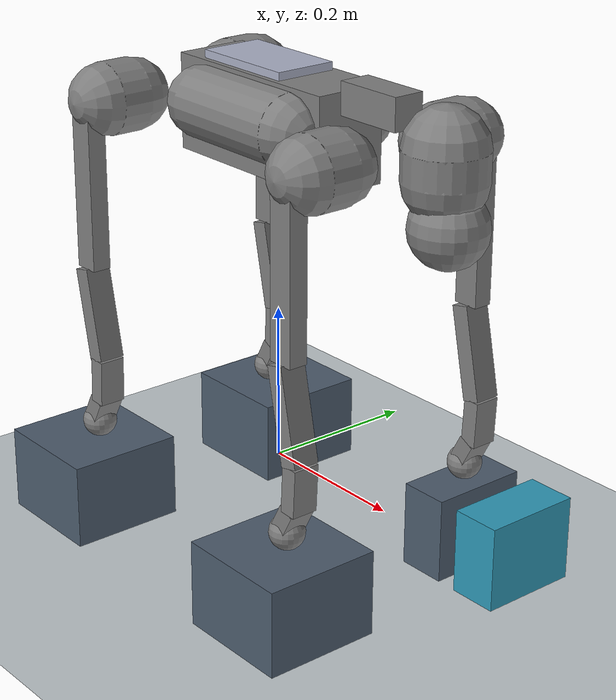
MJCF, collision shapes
<mujoco model="primp_adjustable_landing_pad">
  <include file="/home/ibrahim/Documents/GO-2 PRIMP/primp_project/results/weak_pad/study_v2/trials/fr_no_safe_test_capacity80_adaptive_force_fixed_posture_seed101/weak_pad_adaptive_force_fixed_posture_20260921T111951_992495Z/scene/robot_initial.xml" />
  <statistic center="0 0 0.1" extent="0.9" />
  <visual>
    <headlight diffuse="0.5 0.5 0.5" ambient="0.35 0.35 0.35" />
    <global azimuth="-130" elevation="-25" />
  </visual>
  <worldbody>
    <light pos="0 0 3" dir="0 0 -1" directional="true" />
    <geom name="floor" type="plane" size="0 0 0.05" pos="0 0 -0.12" rgba="0.75 0.78 0.8 1" />
    <geom name="primp_support_FL" type="box" pos="0.19515678006345849 0.13499999999999998 -0.055" size="0.032 0.065 0.055" rgba="0.3 0.36 0.43 1" friction="0.8 0.005 0" condim="3" />
    <geom name="primp_support_FR" type="box" pos="0.18915678006355349 -0.14800000000000005 -0.055" size="0.075 0.075 0.055" rgba="0.3 0.36 0.43 1" friction="0.8 0.005 0" condim="3" />
    <geom name="primp_support_RL" type="box" pos="-0.19064321993625094 0.14900000000021879 -0.055" size="0.075 0.075 0.055" rgba="0.3 0.36 0.43 1" friction="0.8 0.005 0" condim="3" />
    <geom name="primp_support_RR" type="box" pos="-0.19864321993654135 -0.15100000000000002 -0.055" size="0.075 0.075 0.055" rgba="0.3 0.36 0.43 1" friction="0.8 0.005 0" condim="3" />
    <geom name="primp_landing_pad" type="box" pos="0.28515678006345846 0.13499999999999998 -0.055" size="0.032 0.065 0.055" rgba="0.18 0.6 0.72 1" friction="0.8 0.005 0" condim="3" />
  </worldbody>
</mujoco>

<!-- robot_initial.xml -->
<mujoco model="go2_description">
  <compiler angle="radian" autolimits="true" />
  <option cone="elliptic" impratio="100" />
  <default>
    <default class="go2">
      <joint axis="0 1 0" />
      <geom friction="0.6" margin="0.001" />
      <motor ctrlrange="-23.7 23.7" />
      <default class="abduction">
        <joint axis="1 0 0" range="-1.0472 1.0472" />
      </default>
      <default class="hip">
        <default class="front_hip">
          <joint range="-1.5708 3.4907" />
        </default>
        <default class="back_hip">
          <joint range="-0.5236 4.5379" />
        </default>
      </default>
      <default class="knee">
        <joint range="-2.7227 -0.83776" />
        <motor ctrlrange="-45.43 45.43" />
      </default>
      <default class="visual">
        <geom type="mesh" contype="0" conaffinity="0" group="2" />
      </default>
      <default class="collision">
        <geom group="3" />
      </default>
    </default>
  </default>
  <asset>
    <material name="metal" rgba=".9 .95 .95 1" />
    <material name="black" rgba="0 0 0 1" />
    <material name="white" rgba="1 1 1 1" />
    <material name="gray" rgba="0.671705 0.692426 0.774270 1" />
    <mesh file="/home/ibrahim/miniconda3/envs/quadruped-pympc/lib/python3.12/site-packages/gym_quadruped/robot_model/go2/assets/base_0.obj" />
    <mesh file="/home/ibrahim/miniconda3/envs/quadruped-pympc/lib/python3.12/site-packages/gym_quadruped/robot_model/go2/assets/base_1.obj" />
    <mesh file="/home/ibrahim/miniconda3/envs/quadruped-pympc/lib/python3.12/site-packages/gym_quadruped/robot_model/go2/assets/base_2.obj" />
    <mesh file="/home/ibrahim/miniconda3/envs/quadruped-pympc/lib/python3.12/site-packages/gym_quadruped/robot_model/go2/assets/base_3.obj" />
    <mesh file="/home/ibrahim/miniconda3/envs/quadruped-pympc/lib/python3.12/site-packages/gym_quadruped/robot_model/go2/assets/base_4.obj" />
    <mesh file="/home/ibrahim/miniconda3/envs/quadruped-pympc/lib/python3.12/site-packages/gym_quadruped/robot_model/go2/assets/hip_0.obj" />
    <mesh file="/home/ibrahim/miniconda3/envs/quadruped-pympc/lib/python3.12/site-packages/gym_quadruped/robot_model/go2/assets/hip_1.obj" />
    <mesh file="/home/ibrahim/miniconda3/envs/quadruped-pympc/lib/python3.12/site-packages/gym_quadruped/robot_model/go2/assets/thigh_0.obj" />
    <mesh file="/home/ibrahim/miniconda3/envs/quadruped-pympc/lib/python3.12/site-packages/gym_quadruped/robot_model/go2/assets/thigh_1.obj" />
    <mesh file="/home/ibrahim/miniconda3/envs/quadruped-pympc/lib/python3.12/site-packages/gym_quadruped/robot_model/go2/assets/thigh_mirror_0.obj" />
    <mesh file="/home/ibrahim/miniconda3/envs/quadruped-pympc/lib/python3.12/site-packages/gym_quadruped/robot_model/go2/assets/thigh_mirror_1.obj" />
    <mesh file="/home/ibrahim/miniconda3/envs/quadruped-pympc/lib/python3.12/site-packages/gym_quadruped/robot_model/go2/assets/calf_0.obj" />
    <mesh file="/home/ibrahim/miniconda3/envs/quadruped-pympc/lib/python3.12/site-packages/gym_quadruped/robot_model/go2/assets/calf_1.obj" />
    <mesh file="/home/ibrahim/miniconda3/envs/quadruped-pympc/lib/python3.12/site-packages/gym_quadruped/robot_model/go2/assets/calf_mirror_0.obj" />
    <mesh file="/home/ibrahim/miniconda3/envs/quadruped-pympc/lib/python3.12/site-packages/gym_quadruped/robot_model/go2/assets/calf_mirror_1.obj" />
    <mesh file="/home/ibrahim/miniconda3/envs/quadruped-pympc/lib/python3.12/site-packages/gym_quadruped/robot_model/go2/assets/foot.obj" />
  </asset>
  <worldbody>
    <body name="base" pos="0 0 0.445" childclass="go2">
      <inertial pos="0.021112 0 -0.005366" quat="-0.000543471 0.713435 -0.00173769 0.700719" mass="6.921" diaginertia="0.107027 0.0980771 0.0244531" />
      <freejoint />
      <geom mesh="base_0" material="black" class="visual" />
      <geom mesh="base_1" material="black" class="visual" />
      <geom mesh="base_2" material="black" class="visual" />
      <geom mesh="base_3" material="white" class="visual" />
      <geom mesh="base_4" material="gray" class="visual" />
      <geom size="0.07 0.04 0.01" pos="-0.02 0.0 0.06" material="gray" type="box" class="visual" />
      <geom size="0.13 0.04675 0.06" type="box" class="collision" />
      <geom size="0.07 0.04 0.01" pos="-0.02 0.0 0.06" type="box" class="collision" />
      <geom size="0.045 0.02 0.02" pos="0.18 0.0 0.055" type="box" class="collision" />
      <geom size="0.045 0.08" pos="0.0 0.05 0.01" quat="0.707107 0 0.707107 0" type="capsule" class="collision" />
      <geom size="0.045 0.08" pos="0.0 -0.05 0.01" quat="0.707107 0 0.707107 0" type="capsule" class="collision" />
      <geom size="0.05 0.018" pos="0.285 0 0.01" type="capsule" class="collision" />
      <geom size="0.047" pos="0.293 0 -0.06" class="collision" />
      <site name="imu" pos="-0.02557 0 0.04232" />
      <body name="FL_hip" pos="0.1934 0.0465 0">
        <inertial pos="-0.0054 0.00194 -0.000105" quat="0.497014 0.499245 0.505462 0.498237" mass="0.678" diaginertia="0.00088403 0.000596003 0.000479967" />
        <joint name="FL_hip_joint" class="abduction" damping="0.1531" armature="0.0010" frictionloss="0.2884" />
        <geom mesh="hip_0" material="metal" class="visual" />
        <geom mesh="hip_1" material="gray" class="visual" />
        <geom size="0.046 0.02" pos="0 0.05 0" quat="1 1 0 0" type="capsule" class="collision" />
        <body name="FL_thigh" pos="0 0.0955 0">
          <inertial pos="-0.00374 -0.0223 -0.0327" quat="0.829533 0.0847635 -0.0200632 0.551623" mass="1.152" diaginertia="0.00594973 0.00584149 0.000878787" />
          <joint name="FL_thigh_joint" class="front_hip" damping="0.2406" armature="0.0197" frictionloss="0.1739" />
          <geom mesh="thigh_0" material="metal" class="visual" />
          <geom mesh="thigh_1" material="gray" class="visual" />
          <geom size="0.1065 0.01225 0.017" pos="0 0 -0.1065" quat="0.707107 0 0.707107 0" type="box" class="collision" />
          <body name="FL_calf" pos="0 0 -0.213">
            <inertial pos="0.00629595 -0.000622121 -0.141417" quat="0.710672 0.00154099 -0.00450087 0.703508" mass="0.241352" diaginertia="0.0014901 0.00146356 5.31397e-05" />
            <joint name="FL_calf_joint" class="knee" damping="0.1450" armature="0.0356" frictionloss="1.0151" />
            <geom mesh="calf_0" material="gray" class="visual" />
            <geom mesh="calf_1" material="black" class="visual" />
            <geom size="0.012 0.017  0.06" pos="0.008 0 -0.06" quat="0.994493 0 -0.104807 0" type="box" class="collision" />
            <geom size="0.011 0.017  0.03" pos="0.02 0 -0.148" quat="0.999688 0 0.0249974 0" type="box" class="collision" />
            <geom size="0.011 0.017  0.017" pos="0.008 0 -0.190" quat="0.999688 0 0.249974 0" type="box" class="collision" />
            <geom pos="0 0 -0.213" mesh="foot" class="visual" material="black" />
            <geom name="FL" class="collision" size="0.022" pos="-0.002 0 -0.213" priority="1" condim="6" friction="0.8 0.02 0.01" />
          </body>
        </body>
      </body>
      <body name="FR_hip" pos="0.1934 -0.0465 0">
        <inertial pos="-0.0054 -0.00194 -0.000105" quat="0.498237 0.505462 0.499245 0.497014" mass="0.678" diaginertia="0.00088403 0.000596003 0.000479967" />
        <joint name="FR_hip_joint" class="abduction" damping="0.2628" armature="0.0129" frictionloss="0.1835" />
        <geom mesh="hip_0" material="metal" class="visual" quat="4.63268e-05 1 0 0" />
        <geom mesh="hip_1" material="gray" class="visual" quat="4.63268e-05 1 0 0" />
        <geom size="0.046 0.02" pos="0 -0.05 0" quat="0.707107 0.707107 0 0" type="capsule" class="collision" />
        <body name="FR_thigh" pos="0 -0.0955 0">
          <inertial pos="-0.00374 0.0223 -0.0327" quat="0.551623 -0.0200632 0.0847635 0.829533" mass="1.152" diaginertia="0.00594973 0.00584149 0.000878787" />
          <joint name="FR_thigh_joint" class="front_hip" damping="0.1420" armature="0.0135" frictionloss="0.2386" />
          <geom mesh="thigh_mirror_0" material="metal" class="visual" />
          <geom mesh="thigh_mirror_1" material="gray" class="visual" />
          <geom size="0.1065 0.01225 0.017" pos="0 0 -0.1065" quat="0.707107 0 0.707107 0" type="box" class="collision" />
          <body name="FR_calf" pos="0 0 -0.213">
            <inertial pos="0.00629595 0.000622121 -0.141417" quat="0.703508 -0.00450087 0.00154099 0.710672" mass="0.241352" diaginertia="0.0014901 0.00146356 5.31397e-05" />
            <joint name="FR_calf_joint" class="knee" damping="0.1728" armature="0.0371" frictionloss="0.4912" />
            <geom mesh="calf_mirror_0" material="gray" class="visual" />
            <geom mesh="calf_mirror_1" material="black" class="visual" />
            <geom size="0.012 0.017  0.06" pos="0.008 0 -0.06" quat="0.994493 0 -0.104807 0" type="box" class="collision" />
            <geom size="0.011 0.017  0.03" pos="0.02 0 -0.148" quat="0.999688 0 0.0249974 0" type="box" class="collision" />
            <geom size="0.011 0.017  0.017" pos="0.008 0 -0.190" quat="0.999688 0 0.249974 0" type="box" class="collision" />
            <geom pos="0 0 -0.213" mesh="foot" class="visual" material="black" />
            <geom name="FR" class="collision" size="0.022" pos="-0.002 0 -0.213" priority="1" condim="6" friction="0.8 0.02 0.01" />
          </body>
        </body>
      </body>
      <body name="RL_hip" pos="-0.1934 0.0465 0">
        <inertial pos="0.0054 0.00194 -0.000105" quat="0.505462 0.498237 0.497014 0.499245" mass="0.678" diaginertia="0.00088403 0.000596003 0.000479967" />
        <joint name="RL_hip_joint" class="abduction" damping="0.2243" armature="0.0075" frictionloss="0.1550" />
        <geom mesh="hip_0" material="metal" class="visual" quat="4.63268e-05 0 1 0" />
        <geom mesh="hip_1" material="gray" class="visual" quat="4.63268e-05 0 1 0" />
        <geom size="0.046 0.02" pos="0 0.05 0" quat="0.707107 0.707107 0 0" type="capsule" class="collision" />
        <body name="RL_thigh" pos="0 0.0955 0">
          <inertial pos="-0.00374 -0.0223 -0.0327" quat="0.829533 0.0847635 -0.0200632 0.551623" mass="1.152" diaginertia="0.00594973 0.00584149 0.000878787" />
          <joint name="RL_thigh_joint" class="back_hip" damping="0.2352" armature="0.0205" frictionloss="0.1388" />
          <geom mesh="thigh_0" material="metal" class="visual" />
          <geom mesh="thigh_1" material="gray" class="visual" />
          <geom size="0.1065 0.01225 0.017" pos="0 0 -0.1065" quat="0.707107 0 0.707107 0" type="box" class="collision" />
          <body name="RL_calf" pos="0 0 -0.213">
            <inertial pos="0.00629595 -0.000622121 -0.141417" quat="0.710672 0.00154099 -0.00450087 0.703508" mass="0.241352" diaginertia="0.0014901 0.00146356 5.31397e-05" />
            <joint name="RL_calf_joint" class="knee" damping="0.1201" armature="0.0228" frictionloss="1.3573" />
            <geom mesh="calf_0" material="gray" class="visual" />
            <geom mesh="calf_1" material="black" class="visual" />
            <geom size="0.012 0.017  0.06" pos="0.008 0 -0.06" quat="0.994493 0 -0.104807 0" type="box" class="collision" />
            <geom size="0.011 0.017  0.03" pos="0.02 0 -0.148" quat="0.999688 0 0.0249974 0" type="box" class="collision" />
            <geom size="0.011 0.017  0.017" pos="0.008 0 -0.190" quat="0.999688 0 0.249974 0" type="box" class="collision" />
            <geom pos="0 0 -0.213" mesh="foot" class="visual" material="black" />
            <geom name="RL" class="collision" size="0.022" pos="-0.002 0 -0.213" priority="1" condim="6" friction="0.8 0.02 0.01" />
          </body>
        </body>
      </body>
      <body name="RR_hip" pos="-0.1934 -0.0465 0">
        <inertial pos="0.0054 -0.00194 -0.000105" quat="0.499245 0.497014 0.498237 0.505462" mass="0.678" diaginertia="0.00088403 0.000596003 0.000479967" />
        <joint name="RR_hip_joint" class="abduction" damping="0.2989" armature="0.0081" frictionloss="0.2488" />
        <geom mesh="hip_0" material="metal" class="visual" quat="2.14617e-09 4.63268e-05 4.63268e-05 -1" />
        <geom mesh="hip_1" material="gray" class="visual" quat="2.14617e-09 4.63268e-05 4.63268e-05 -1" />
        <geom size="0.046 0.02" pos="0 -0.05 0" quat="0.707107 0.707107 0 0" type="capsule" class="collision" />
        <body name="RR_thigh" pos="0 -0.0955 0">
          <inertial pos="-0.00374 0.0223 -0.0327" quat="0.551623 -0.0200632 0.0847635 0.829533" mass="1.152" diaginertia="0.00594973 0.00584149 0.000878787" />
          <joint name="RR_thigh_joint" class="back_hip" damping="0.1983" armature="0.0139" frictionloss="0.2484" />
          <geom mesh="thigh_mirror_0" material="metal" class="visual" />
          <geom mesh="thigh_mirror_1" material="gray" class="visual" />
          <geom size="0.1065 0.01225 0.017" pos="0 0 -0.1065" quat="0.707107 0 0.707107 0" type="box" class="collision" />
          <body name="RR_calf" pos="0 0 -0.213">
            <inertial pos="0.00629595 0.000622121 -0.141417" quat="0.703508 -0.00450087 0.00154099 0.710672" mass="0.241352" diaginertia="0.0014901 0.00146356 5.31397e-05" />
            <joint name="RR_calf_joint" class="knee" damping="0.1000" armature="0.0332" frictionloss="0.7893" />
            <geom mesh="calf_mirror_0" material="gray" class="visual" />
            <geom mesh="calf_mirror_1" material="black" class="visual" />
            <geom size="0.012 0.017  0.06" pos="0.008 0 -0.06" quat="0.994493 0 -0.104807 0" type="box" class="collision" />
            <geom size="0.011 0.017  0.03" pos="0.02 0 -0.148" quat="0.999688 0 0.0249974 0" type="box" class="collision" />
            <geom size="0.011 0.017  0.017" pos="0.008 0 -0.190" quat="0.999688 0 0.249974 0" type="box" class="collision" />
            <geom pos="0 0 -0.213" mesh="foot" class="visual" material="black" />
            <geom name="RR" class="collision" size="0.022" pos="-0.002 0 -0.213" priority="1" condim="6" friction="0.8 0.02 0.01" />
          </body>
        </body>
      </body>
    </body>
  </worldbody>
  <actuator>
    <motor class="abduction" name="FL_hip" joint="FL_hip_joint" />
    <motor class="hip" name="FL_thigh" joint="FL_thigh_joint" />
    <motor class="knee" name="FL_calf" joint="FL_calf_joint" />
    <motor class="abduction" name="FR_hip" joint="FR_hip_joint" />
    <motor class="hip" name="FR_thigh" joint="FR_thigh_joint" />
    <motor class="knee" name="FR_calf" joint="FR_calf_joint" />
    <motor class="abduction" name="RL_hip" joint="RL_hip_joint" />
    <motor class="hip" name="RL_thigh" joint="RL_thigh_joint" />
    <motor class="knee" name="RL_calf" joint="RL_calf_joint" />
    <motor class="abduction" name="RR_hip" joint="RR_hip_joint" />
    <motor class="hip" name="RR_thigh" joint="RR_thigh_joint" />
    <motor class="knee" name="RR_calf" joint="RR_calf_joint" />
  </actuator>
  <sensor>
    <accelerometer name="imu_acc" site="imu" />
    <gyro name="imu_gyro" site="imu" />
    <framepos name="imu_pos" objtype="site" objname="imu" />
    <framequat name="imu_quat" objtype="site" objname="imu" />
    <jointpos name="FL_hip_joint_pos" joint="FL_hip_joint" />
    <jointpos name="FL_thigh_joint_pos" joint="FL_thigh_joint" />
    <jointpos name="FL_calf_joint_pos" joint="FL_calf_joint" />
    <jointpos name="FR_hip_joint_pos" joint="FR_hip_joint" />
    <jointpos name="FR_thigh_joint_pos" joint="FR_thigh_joint" />
    <jointpos name="FR_calf_joint_pos" joint="FR_calf_joint" />
    <jointpos name="RL_hip_joint_pos" joint="RL_hip_joint" />
    <jointpos name="RL_thigh_joint_pos" joint="RL_thigh_joint" />
    <jointpos name="RL_calf_joint_pos" joint="RL_calf_joint" />
    <jointpos name="RR_hip_joint_pos" joint="RR_hip_joint" />
    <jointpos name="RR_thigh_joint_pos" joint="RR_thigh_joint" />
    <jointpos name="RR_calf_joint_pos" joint="RR_calf_joint" />
  </sensor>
  <keyframe>
    <key name="home" qpos="-0.0040000000000000001 -0.0060000000000000001 0.27000000000000002 1 0 0 0 -0.0037566534261238497 0.87459001010722337 -1.8017890627888735 -2.0687960166671715e-16 0.89625428526483797 -1.800016784880875 0.048346720469479292 0.85525929002772727 -1.7696538523911243 -0.011239304867471317 0.89669721578421002 -1.7934328482529796" />
    <key name="down" qpos="0 0 0.05 1 0 0 0 0.0 1.21 -2.794 0.0 1.21 -2.794 0.40 1.21 -2.794 -0.40 1.21 -2.794" />
    <key name="sys_id_1" qpos="0 0 0.05 1 0 0 0 0.0 1.21 -2.5 0.0 1.21 -2.5 0.0 1.21 -2.5 0.0 1.21 -2.5" />
    <key name="sys_id_2" qpos="0 0 0.05 1 0 0 0 0.6 0.5 -1.4 0.6 0.5 -1.4 0.6 0.5 -1.4 0.6 0.5 -1.4" />
  </keyframe>
</mujoco>
